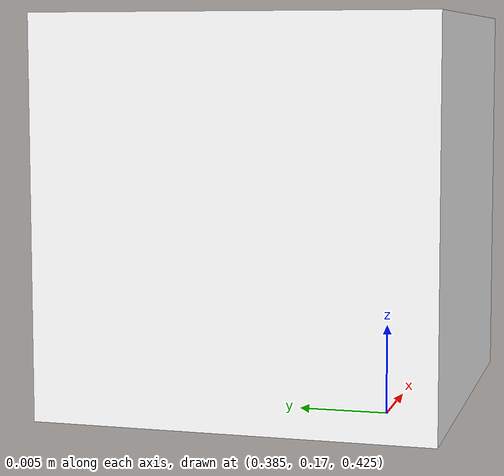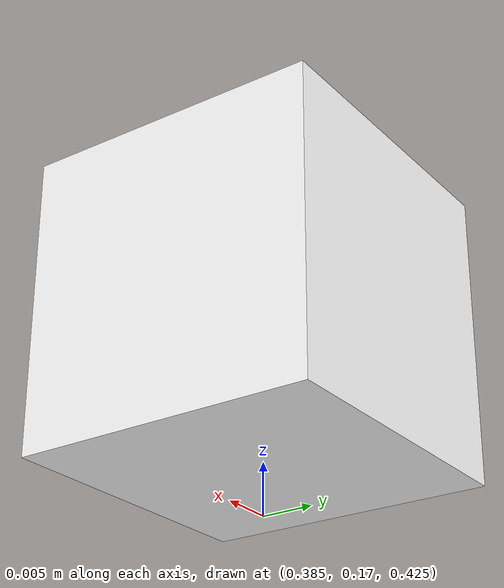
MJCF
<mujoco>
  <worldbody>
    <!-- Cube to pick (freejoint allows 6-DOF motion) - Half size: 0.0125m - RIGHT of robot (matches training) -->
    <!-- Starting JUST ABOVE table surface to avoid initial contact issues -->
    <body name="cube" pos="0.4 0.18 0.435">
      <freejoint name="cube_freejoint"/>
      <!-- Very light cube (0.025kg = 25g) - easy to grip and hold -->
      <!-- High friction (2.0) with softer contacts for better grip stability -->
      <geom name="cube_geom" type="box" size="0.0125 0.0125 0.0125" rgba="1 1 1 1" mass="0.025"
            friction="2.0 0.2 0.01"
            condim="4"
            contype="1" conaffinity="1"
            solimp="0.98 0.99 0.001 0.5 2"
            solref="0.01 1"/>
      <site name="cube_center" pos="0 0 0" size="0.005" rgba="0 1 0 0.5"/>
    </body>
  </worldbody>
</mujoco>
